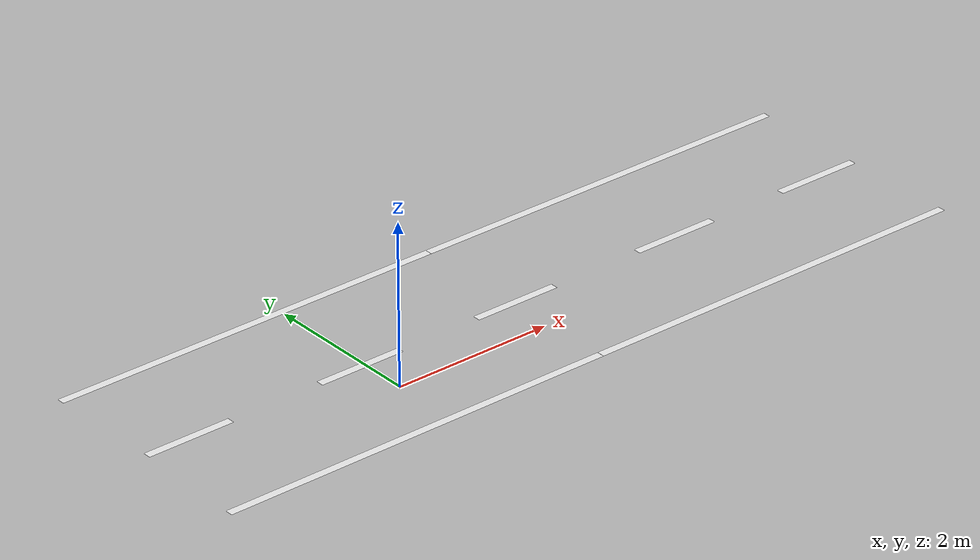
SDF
<?xml version='1.0'?>
<sdf version='1.6'>
  <model name='road'>
    <model name='roadmark'>
      <link name='link'>
        <pose frame=''>0 0 0.001 0 -0 0</pose>
        <inertial>
          <mass>0.362604</mass>
          <inertia>
            <ixx>0.00016034</ixx>
            <ixy>0</ixy>
            <ixz>0</ixz>
            <iyy>0.757889</iyy>
            <iyz>0</iyz>
            <izz>0.758045</izz>
          </inertia>
          <pose frame=''>0 0 0 0 -0 0</pose>
        </inertial>
        <self_collide>0</self_collide>
        <kinematic>0</kinematic>
        <gravity>0</gravity>
        <visual name='visual'>
          <geometry>
            <box>
              <size>5 0.1 1e-06</size>
            </box>
          </geometry>
          <material>
            <script>
              <name>Gazebo/White</name>
              <uri>file://media/materials/scripts/gazebo.material</uri>
            </script>
            <shader type='pixel'>
              <normal_map>__default__</normal_map>
            </shader>
            <ambient>1 1 1 0</ambient>
            <diffuse>1 1 1 0</diffuse>
            <specular>1 1 1 0</specular>
            <emissive>1 1 1 1</emissive>
            <lighting>1</lighting>
          </material>
          <pose frame=''>0 0 0 0 -0 0</pose>
          <transparency>0</transparency>
          <cast_shadows>1</cast_shadows>
        </visual>
      </link>
      <static>0</static>
      <allow_auto_disable>1</allow_auto_disable>
      <pose frame=''>-0.42038 -0.838671 -0 0 -0 0</pose>
    </model>
    <model name='roadmark_0'>
      <link name='link'>
        <pose frame=''>0 0 0.001 0 -0 0</pose>
        <inertial>
          <mass>0.362604</mass>
          <inertia>
            <ixx>0.00016034</ixx>
            <ixy>0</ixy>
            <ixz>0</ixz>
            <iyy>0.757889</iyy>
            <iyz>0</iyz>
            <izz>0.758045</izz>
          </inertia>
          <pose frame=''>0 0 0 0 -0 0</pose>
        </inertial>
        <self_collide>0</self_collide>
        <kinematic>0</kinematic>
        <gravity>0</gravity>
        <visual name='visual'>
          <geometry>
            <box>
              <size>5 0.1 1e-06</size>
            </box>
          </geometry>
          <material>
            <script>
              <name>Gazebo/White</name>
              <uri>file://media/materials/scripts/gazebo.material</uri>
            </script>
            <shader type='pixel'>
              <normal_map>__default__</normal_map>
            </shader>
            <ambient>1 1 1 0</ambient>
            <diffuse>1 1 1 0</diffuse>
            <specular>1 1 1 0</specular>
            <emissive>1 1 1 1</emissive>
            <lighting>1</lighting>
          </material>
          <pose frame=''>0 0 0 0 -0 0</pose>
          <transparency>0</transparency>
          <cast_shadows>1</cast_shadows>
        </visual>
      </link>
      <static>0</static>
      <allow_auto_disable>1</allow_auto_disable>
      <pose frame=''>4.58056 -0.838753 0 0 -0 0</pose>
    </model>
    <model name='roadmark_1'>
      <link name='link'>
        <pose frame=''>0 0 0.001 0 -0 0</pose>
        <inertial>
          <mass>0.362604</mass>
          <inertia>
            <ixx>0.00016034</ixx>
            <ixy>0</ixy>
            <ixz>0</ixz>
            <iyy>0.757889</iyy>
            <iyz>0</iyz>
            <izz>0.758045</izz>
          </inertia>
          <pose frame=''>0 0 0 0 -0 0</pose>
        </inertial>
        <self_collide>0</self_collide>
        <kinematic>0</kinematic>
        <gravity>0</gravity>
        <visual name='visual'>
          <geometry>
            <box>
              <size>5 0.1 1e-06</size>
            </box>
          </geometry>
          <material>
            <script>
              <name>Gazebo/White</name>
              <uri>file://media/materials/scripts/gazebo.material</uri>
            </script>
            <shader type='pixel'>
              <normal_map>__default__</normal_map>
            </shader>
            <ambient>1 1 1 0</ambient>
            <diffuse>1 1 1 0</diffuse>
            <specular>1 1 1 0</specular>
            <emissive>1 1 1 1</emissive>
            <lighting>1</lighting>
          </material>
          <pose frame=''>0 0 0 0 -0 0</pose>
          <transparency>0</transparency>
          <cast_shadows>1</cast_shadows>
        </visual>
      </link>
      <static>0</static>
      <allow_auto_disable>1</allow_auto_disable>
      <pose frame=''>-0.442951 2.05888 0 0 -0 0</pose>
    </model>
    <model name='roadmark_2'>
      <link name='link'>
        <pose frame=''>0 0 0.001 0 -0 0</pose>
        <inertial>
          <mass>0.362604</mass>
          <inertia>
            <ixx>0.00016034</ixx>
            <ixy>0</ixy>
            <ixz>0</ixz>
            <iyy>0.757889</iyy>
            <iyz>0</iyz>
            <izz>0.758045</izz>
          </inertia>
          <pose frame=''>0 0 0 0 -0 0</pose>
        </inertial>
        <self_collide>0</self_collide>
        <kinematic>0</kinematic>
        <gravity>0</gravity>
        <visual name='visual'>
          <geometry>
            <box>
              <size>5 0.1 1e-06</size>
            </box>
          </geometry>
          <material>
            <script>
              <name>Gazebo/White</name>
              <uri>file://media/materials/scripts/gazebo.material</uri>
            </script>
            <shader type='pixel'>
              <normal_map>__default__</normal_map>
            </shader>
            <ambient>1 1 1 0</ambient>
            <diffuse>1 1 1 0</diffuse>
            <specular>1 1 1 0</specular>
            <emissive>1 1 1 1</emissive>
            <lighting>1</lighting>
          </material>
          <pose frame=''>0 0 0 0 -0 0</pose>
          <transparency>0</transparency>
          <cast_shadows>1</cast_shadows>
        </visual>
      </link>
      <static>0</static>
      <allow_auto_disable>1</allow_auto_disable>
      <pose frame=''>4.55587 2.0583 0 0 -0 0</pose>
    </model>
    <model name='roadmark_mid'>
      <link name='link'>
        <pose frame=''>0 0 0.0001 0 -0 0</pose>
        <inertial>
          <mass>0.0807885</mass>
          <inertia>
            <ixx>3.572e-05</ixx>
            <ixy>0</ixy>
            <ixz>0</ixz>
            <iyy>0.00838261</iyy>
            <iyz>0</iyz>
            <izz>0.00841742</izz>
          </inertia>
          <pose frame=''>0 0 0 0 -0 0</pose>
        </inertial>
        <self_collide>0</self_collide>
        <kinematic>0</kinematic>
        <gravity>0</gravity>
        <visual name='visual'>
          <geometry>
            <box>
              <size>1.1 0.1 1e-06</size>
            </box>
          </geometry>
          <material>
            <script>
              <name>Gazebo/White</name>
              <uri>file://media/materials/scripts/gazebo.material</uri>
            </script>
            <shader type='pixel'>
              <normal_map>__default__</normal_map>
            </shader>
            <ambient>1 1 1 1</ambient>
            <diffuse>0.7 0.7 0.7 0</diffuse>
            <specular>0.01 0.01 0.01 0</specular>
            <emissive>0 0 0 1</emissive>
            <lighting>0</lighting>
          </material>
          <pose frame=''>0 0 0 0 -0 0</pose>
          <transparency>0</transparency>
          <cast_shadows>1</cast_shadows>
        </visual>
      </link>
      <static>0</static>
      <allow_auto_disable>1</allow_auto_disable>
      <pose frame=''>6.50343 0.603813 0 0 -0 0</pose>
    </model>
    <model name='roadmark_mid_0'>
      <link name='link'>
        <pose frame=''>0 0 0.0001 0 -0 0</pose>
        <inertial>
          <mass>0.0807885</mass>
          <inertia>
            <ixx>3.572e-05</ixx>
            <ixy>0</ixy>
            <ixz>0</ixz>
            <iyy>0.00838261</iyy>
            <iyz>0</iyz>
            <izz>0.00841742</izz>
          </inertia>
          <pose frame=''>0 0 0 0 -0 0</pose>
        </inertial>
        <self_collide>0</self_collide>
        <kinematic>0</kinematic>
        <gravity>0</gravity>
        <visual name='visual'>
          <geometry>
            <box>
              <size>1.1 0.1 1e-06</size>
            </box>
          </geometry>
          <material>
            <script>
              <name>Gazebo/White</name>
              <uri>file://media/materials/scripts/gazebo.material</uri>
            </script>
            <shader type='pixel'>
              <normal_map>__default__</normal_map>
            </shader>
            <ambient>1 1 1 1</ambient>
            <diffuse>0.7 0.7 0.7 0</diffuse>
            <specular>0.01 0.01 0.01 0</specular>
            <emissive>0 0 0 1</emissive>
            <lighting>0</lighting>
          </material>
          <pose frame=''>0 0 0 0 -0 0</pose>
          <transparency>0</transparency>
          <cast_shadows>1</cast_shadows>
        </visual>
      </link>
      <static>0</static>
      <allow_auto_disable>1</allow_auto_disable>
      <pose frame=''>4.38554 0.604394 0 0 -0 0</pose>
    </model>
    <model name='roadmark_mid_1'>
      <link name='link'>
        <pose frame=''>0 0 0.0001 0 -0 0</pose>
        <inertial>
          <mass>0.0807885</mass>
          <inertia>
            <ixx>3.572e-05</ixx>
            <ixy>0</ixy>
            <ixz>0</ixz>
            <iyy>0.00838261</iyy>
            <iyz>0</iyz>
            <izz>0.00841742</izz>
          </inertia>
          <pose frame=''>0 0 0 0 -0 0</pose>
        </inertial>
        <self_collide>0</self_collide>
        <kinematic>0</kinematic>
        <gravity>0</gravity>
        <visual name='visual'>
          <geometry>
            <box>
              <size>1.1 0.1 1e-06</size>
            </box>
          </geometry>
          <material>
            <script>
              <name>Gazebo/White</name>
              <uri>file://media/materials/scripts/gazebo.material</uri>
            </script>
            <shader type='pixel'>
              <normal_map>__default__</normal_map>
            </shader>
            <ambient>1 1 1 1</ambient>
            <diffuse>0.7 0.7 0.7 0</diffuse>
            <specular>0.01 0.01 0.01 0</specular>
            <emissive>0 0 0 1</emissive>
            <lighting>0</lighting>
          </material>
          <pose frame=''>0 0 0 0 -0 0</pose>
          <transparency>0</transparency>
          <cast_shadows>1</cast_shadows>
        </visual>
      </link>
      <static>0</static>
      <allow_auto_disable>1</allow_auto_disable>
      <pose frame=''>2.09333 0.603718 0 0 -0 0</pose>
    </model>
    <model name='roadmark_mid_2'>
      <link name='link'>
        <pose frame=''>0 0 0.0001 0 -0 0</pose>
        <inertial>
          <mass>0.0807885</mass>
          <inertia>
            <ixx>3.572e-05</ixx>
            <ixy>0</ixy>
            <ixz>0</ixz>
            <iyy>0.00838261</iyy>
            <iyz>0</iyz>
            <izz>0.00841742</izz>
          </inertia>
          <pose frame=''>0 0 0 0 -0 0</pose>
        </inertial>
        <self_collide>0</self_collide>
        <kinematic>0</kinematic>
        <gravity>0</gravity>
        <visual name='visual'>
          <geometry>
            <box>
              <size>1.1 0.1 1e-06</size>
            </box>
          </geometry>
          <material>
            <script>
              <name>Gazebo/White</name>
              <uri>file://media/materials/scripts/gazebo.material</uri>
            </script>
            <shader type='pixel'>
              <normal_map>__default__</normal_map>
            </shader>
            <ambient>1 1 1 1</ambient>
            <diffuse>0.7 0.7 0.7 0</diffuse>
            <specular>0.01 0.01 0.01 0</specular>
            <emissive>0 0 0 1</emissive>
            <lighting>0</lighting>
          </material>
          <pose frame=''>0 0 0 0 -0 0</pose>
          <transparency>0</transparency>
          <cast_shadows>1</cast_shadows>
        </visual>
      </link>
      <static>0</static>
      <allow_auto_disable>1</allow_auto_disable>
      <pose frame=''>-0.057715 0.605008 0 0 -0 0</pose>
    </model>
    <model name='roadmark_mid_3'>
      <link name='link'>
        <pose frame=''>0 0 0.0001 0 -0 0</pose>
        <inertial>
          <mass>0.0807885</mass>
          <inertia>
            <ixx>3.572e-05</ixx>
            <ixy>0</ixy>
            <ixz>0</ixz>
            <iyy>0.00838261</iyy>
            <iyz>0</iyz>
            <izz>0.00841742</izz>
          </inertia>
          <pose frame=''>0 0 0 0 -0 0</pose>
        </inertial>
        <self_collide>0</self_collide>
        <kinematic>0</kinematic>
        <gravity>0</gravity>
        <visual name='visual'>
          <geometry>
            <box>
              <size>1.1 0.1 1e-06</size>
            </box>
          </geometry>
          <material>
            <script>
              <name>Gazebo/White</name>
              <uri>file://media/materials/scripts/gazebo.material</uri>
            </script>
            <shader type='pixel'>
              <normal_map>__default__</normal_map>
            </shader>
            <ambient>1 1 1 1</ambient>
            <diffuse>0.7 0.7 0.7 0</diffuse>
            <specular>0.01 0.01 0.01 0</specular>
            <emissive>0 0 0 1</emissive>
            <lighting>0</lighting>
          </material>
          <pose frame=''>0 0 0 0 -0 0</pose>
          <transparency>0</transparency>
          <cast_shadows>1</cast_shadows>
        </visual>
      </link>
      <static>0</static>
      <allow_auto_disable>1</allow_auto_disable>
      <pose frame=''>-2.34224 0.605175 0 0 -0 0</pose>
    </model>
    <static>0</static>
    <allow_auto_disable>1</allow_auto_disable>
  </model>
</sdf>
